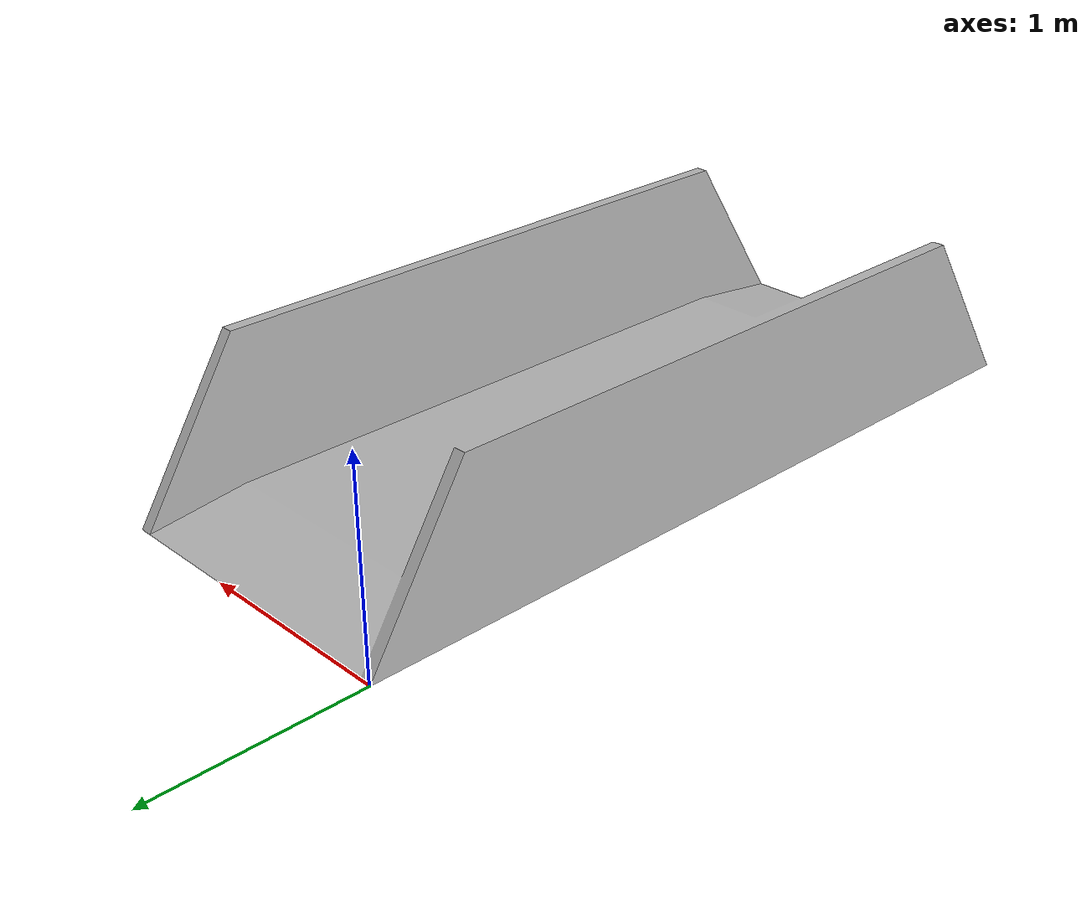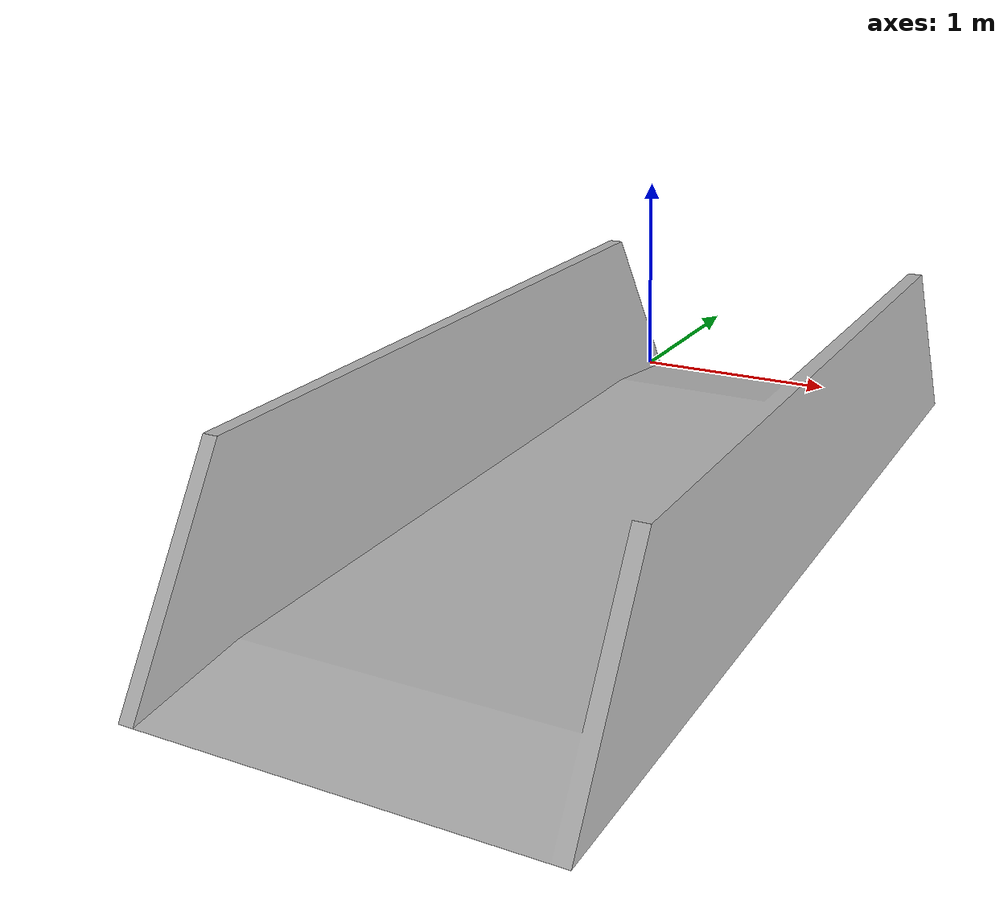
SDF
<?xml version="1.0" ?>
<sdf version="1.6">
  <model name="bridge">
    <pose>0 0 0 1.57 0 0</pose>
    <static>true</static>
    <link name="link">
      <visual name="visual">
        <geometry>
          <mesh>
            <uri>model://bridge/meshes/bridge.STL</uri>
            <scale>0.001 0.001 0.001</scale>
          </mesh>
        </geometry>
      </visual>
      <collision name="collision">
        <geometry>
          <mesh>
            <uri>model://bridge/meshes/bridge.STL</uri>
            <scale>0.001 0.001 0.001</scale>
          </mesh>
        </geometry>
      </collision>
    </link>
  </model>
</sdf>
